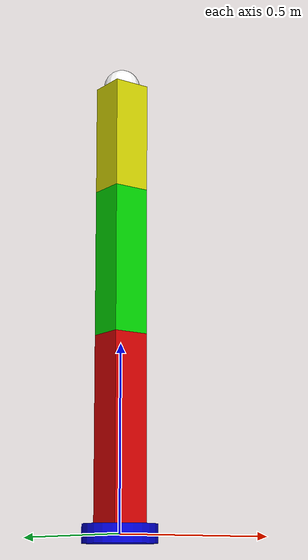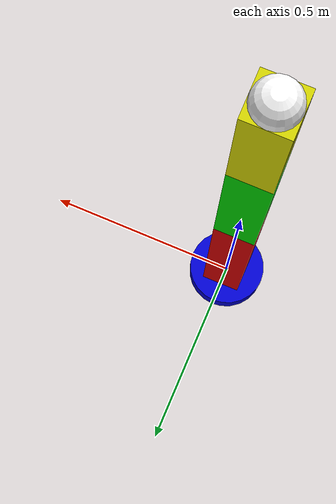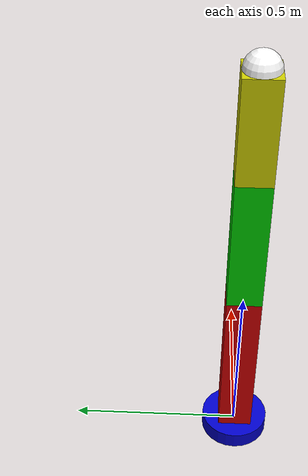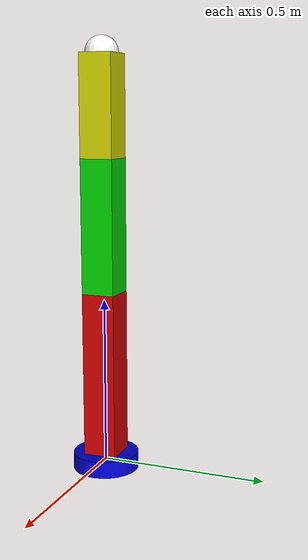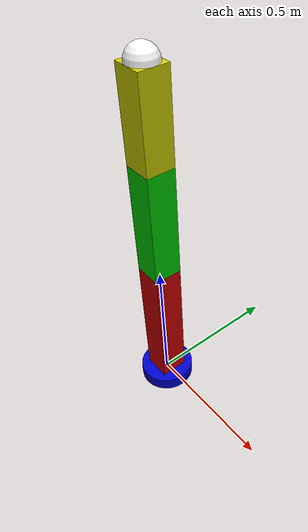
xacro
<?xml version="1.0"?>
<robot xmlns:xacro="http://www.ros.org/wiki/xacro" name="rrr_robot">
  <!-- Mobile base platform -->
  <xacro:arg name="mobile_base_type" default=""/>
  <xacro:property name="mobile_base_type" value="$(arg mobile_base_type)"/>
  <xacro:if value="${mobile_base_type != ''}">
    <link name="world"/>
    <link name="mobile_base">
      <visual>
        <geometry>
          <box size="0.4 0.3 0.05"/>
        </geometry>
        <material name="gray">
          <color rgba="0.5 0.5 0.5 1"/>
        </material>
      </visual>
      <collision>
        <geometry>
          <box size="0.4 0.3 0.05"/>
        </geometry>
      </collision>
    </link>
  </xacro:if>
  <link name="base_link">
    <visual>
      <geometry>
        <cylinder length="0.05" radius="0.1"/>
      </geometry>
      <material name="blue">
        <color rgba="0 0 0.8 1"/>
      </material>
    </visual>
    <collision>
      <geometry>
        <cylinder length="0.05" radius="0.1"/>
      </geometry>
    </collision>
  </link>
  <link name="link1">
    <visual>
      <geometry>
        <box size="0.1 0.1 0.5"/>
      </geometry>
      <origin xyz="0 0 0.25" rpy="0 0 0"/>
      <material name="red">
        <color rgba="0.8 0 0 1"/>
      </material>
    </visual>
    <collision>
      <geometry>
        <box size="0.1 0.1 0.5"/>
      </geometry>
      <origin xyz="0 0 0.25" rpy="0 0 0"/>
    </collision>
  </link>
  <link name="link2">
    <visual>
      <geometry>
        <box size="0.1 0.1 0.4"/>
      </geometry>
      <origin xyz="0 0 0.2" rpy="0 0 0"/>
      <material name="green">
        <color rgba="0 0.8 0 1"/>
      </material>
    </visual>
    <collision>
      <geometry>
        <box size="0.1 0.1 0.4"/>
      </geometry>
      <origin xyz="0 0 0.2" rpy="0 0 0"/>
    </collision>
  </link>
  <link name="link3">
    <visual>
      <geometry>
        <box size="0.1 0.1 0.3"/>
      </geometry>
      <origin xyz="0 0 0.15" rpy="0 0 0"/>
      <material name="yellow">
        <color rgba="0.8 0.8 0 1"/>
      </material>
    </visual>
    <collision>
      <geometry>
        <box size="0.1 0.1 0.3"/>
      </geometry>
      <origin xyz="0 0 0.15" rpy="0 0 0"/>
    </collision>
  </link>
  <link name="end_effector">
    <visual>
      <geometry>
        <sphere radius="0.05"/>
      </geometry>
      <material name="white">
        <color rgba="1 1 1 1"/>
      </material>
    </visual>
    <collision>
      <geometry>
        <sphere radius="0.05"/>
      </geometry>
    </collision>
  </link>
  <xacro:if value="${mobile_base_type != ''}">
    <joint name="${mobile_base_type}_joint" type="${mobile_base_type}">
      <parent link="world"/>
      <child link="mobile_base"/>
      <origin xyz="0 0 0" rpy="0 0 0"/>
    </joint>
    <!-- Mount base_link to mobile base -->
    <joint name="base_mount" type="fixed">
      <parent link="mobile_base"/>
      <child link="base_link"/>
      <origin xyz="0 0 0.05" rpy="0 0 0"/>
    </joint>
  </xacro:if>
  <joint name="joint1" type="revolute">
    <parent link="base_link"/>
    <child link="link1"/>
    <origin xyz="0 0 0.025" rpy="0 0 0"/>
    <axis xyz="0 0 1"/>
    <limit lower="-3.14159" upper="3.14159" effort="100" velocity="1"/>
  </joint>
  <joint name="joint2" type="revolute">
    <parent link="link1"/>
    <child link="link2"/>
    <origin xyz="0 0 0.5" rpy="0 0 0"/>
    <axis xyz="0 1 0"/>
    <limit lower="-3.14159" upper="3.14159" effort="100" velocity="1"/>
  </joint>
  <joint name="joint3" type="revolute">
    <parent link="link2"/>
    <child link="link3"/>
    <origin xyz="0 0 0.4" rpy="0 0 0"/>
    <axis xyz="0 1 0"/>
    <limit lower="-3.14159" upper="3.14159" effort="100" velocity="1"/>
  </joint>
  <joint name="end_effector_joint" type="fixed">
    <parent link="link3"/>
    <child link="end_effector"/>
    <origin xyz="0 0 0.3" rpy="0 0 0"/>
    <axis xyz="0 0 1"/>
  </joint>
</robot>
